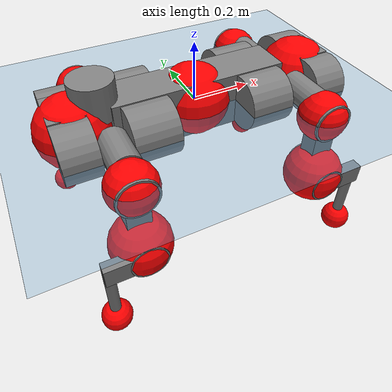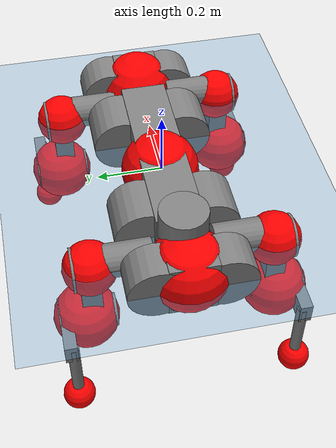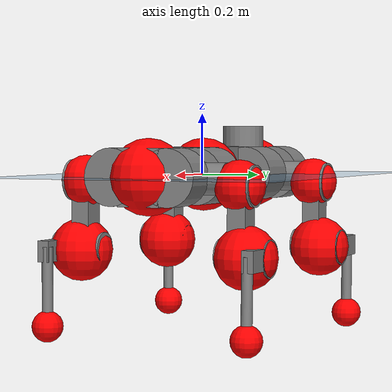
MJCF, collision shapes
<mujoco model="anymal_c">
  <compiler angle="radian" assetdir="assets" balanceinertia="true" inertiafromgeom="false"/>

  <option timestep="0.005" density="1.2" viscosity="2e-05"/>

  <size nkey="1"/>

  <visual>
    <quality shadowsize="8192"/>
    <map shadowclip="0.5"/>
  </visual>

  <default>
    <default class="/">
      <material specular="0" shininess="0.25"/>
      <geom contype="0" conaffinity="0" group="1" solref="-1000 -80"/>
      <site size="0.01 0.005 0.005" group="5"/>
      <general forcelimited="true" forcerange="-80 80" biastype="affine" gainprm="80" biasprm="0 -80 -2"/>
      <default class="anymal_c">
        <joint armature="0.01" damping="0.01" frictionloss="0.1"/>
        <default class="visual">
          <geom type="mesh" group="2"/>
          <default class="visual_zflip"/>
        </default>
        <default class="collision">
          <geom type="cylinder" group="3"/>
          <default class="foot">
            <geom size="0.03 0 0" type="sphere" condim="6" priority="1" friction="0.8 0.02 0.01" solimp="0.015 1 0.03"/>
          </default>
        </default>
      </default>
      <default class="reward_collision_sphere">
        <geom group="5" rgba="1 0 0 1"/>
      </default>
    </default>
  </default>

  <asset>
    <texture type="skybox" colorspace="auto" name="//unnamed_texture_0" builtin="gradient" rgb1="0.95 0.95 0.95" rgb2="0.95 0.95 0.95" width="100" height="600"/>
    <texture type="2d" colorspace="auto" name="texplane" builtin="checker" rgb1="0.345 0.575 0.748" rgb2="0.345 0.575 0.748" markrgb="1 1 1" width="512" height="512"/>
    <texture type="2d" colorspace="linear" name="base" file="base.png"/>
    <texture type="2d" colorspace="linear" name="top_shell" file="top_shell.png"/>
    <texture type="2d" colorspace="linear" name="bottom_shell" file="bottom_shell.png"/>
    <texture type="2d" colorspace="linear" name="remote" file="remote.png"/>
    <texture type="2d" colorspace="linear" name="hatch" file="hatch.png"/>
    <texture type="2d" colorspace="linear" name="handle" file="handle.png"/>
    <texture type="2d" colorspace="linear" name="face" file="face.png"/>
    <texture type="2d" colorspace="linear" name="battery" file="battery.png"/>
    <texture type="2d" colorspace="linear" name="lidar_cage" file="lidar_cage.png"/>
    <texture type="2d" colorspace="linear" name="depth_camera" file="depth_camera.png"/>
    <texture type="2d" colorspace="linear" name="wide_angle_camera" file="wide_angle_camera.png"/>
    <texture type="2d" colorspace="linear" name="lidar" file="lidar.png"/>
    <texture type="2d" colorspace="linear" name="drive" file="drive.png"/>
    <texture type="2d" colorspace="linear" name="hip_l" file="hip_l.png"/>
    <texture type="2d" colorspace="linear" name="shank_l" file="shank_l.png"/>
    <texture type="2d" colorspace="linear" name="foot" file="foot.png"/>
    <texture type="2d" colorspace="linear" name="thigh" file="thigh.png"/>
    <texture type="2d" colorspace="linear" name="shank_r" file="shank_r.png"/>
    <texture type="2d" colorspace="linear" name="hip_r" file="hip_r.png"/>
    <material name="MatPlane" class="/" texture="texplane" texuniform="true" texrepeat="2 2" specular="0.9" shininess="0.5"/>
    <material name="black_plastic" class="/" rgba="0.007 0.007 0.007 1"/>
    <material name="green" class="/" rgba="0.052 0.178 0.033 1"/>
    <material name="red" class="/" rgba="0.178 0.006 0.005 1"/>
    <material name="yellow" class="/" rgba="0.178 0.119 0.006 1"/>
    <material name="lwl" class="/" rgba="0.8 0.8 0.8 1"/>
    <material name="base" class="/" texture="base"/>
    <material name="top_shell" class="/" texture="top_shell"/>
    <material name="bottom_shell" class="/" texture="bottom_shell"/>
    <material name="hip_l" class="/" texture="hip_l"/>
    <material name="thigh" class="/" texture="thigh"/>
    <material name="shank_l" class="/" texture="shank_l"/>
    <material name="foot" class="/" texture="foot"/>
    <material name="hip_r" class="/" texture="hip_r"/>
    <material name="shank" class="/" texture="shank_r"/>
    <material name="hatch" class="/" texture="hatch"/>
    <material name="remote" class="/" texture="remote"/>
    <material name="handle" class="/" texture="handle"/>
    <material name="face" class="/" texture="face"/>
    <material name="depth_camera" class="/" texture="depth_camera"/>
    <material name="wide_angle_camera" class="/" texture="wide_angle_camera"/>
    <material name="battery" class="/" texture="battery"/>
    <material name="lidar_cage" class="/" texture="lidar_cage"/>
    <material name="lidar" class="/" texture="lidar"/>
    <material name="drive" class="/" texture="drive"/>
    <mesh name="base_0" class="/" file="base_0.obj"/>
    <mesh name="base_1" class="/" file="base_1.obj"/>
    <mesh name="base_2" class="/" file="base_2.obj"/>
    <mesh name="base_3" class="/" file="base_3.obj"/>
    <mesh name="base_4" class="/" file="base_4.obj"/>
    <mesh name="base_5" class="/" file="base_5.obj"/>
    <mesh name="top_shell" class="/" file="top_shell.obj"/>
    <mesh name="bottom_shell" class="/" file="bottom_shell.obj"/>
    <mesh name="remote" class="/" file="remote.obj"/>
    <mesh name="handle" class="/" file="handle.obj"/>
    <mesh name="face" class="/" file="face.obj"/>
    <mesh name="wide_angle_camera" class="/" file="wide_angle_camera.obj"/>
    <mesh name="depth_camera" class="/" file="depth_camera.obj"/>
    <mesh name="battery" class="/" file="battery.obj"/>
    <mesh name="lidar_cage" class="/" file="lidar_cage.obj"/>
    <mesh name="lidar" class="/" file="lidar.obj"/>
    <mesh name="drive" class="/" file="drive.obj"/>
    <mesh name="hip_l" class="/" file="hip_l.obj"/>
    <mesh name="thigh" class="/" file="thigh.obj"/>
    <mesh name="shank_l" class="/" file="shank_l.obj"/>
    <mesh name="foot" class="/" file="foot.obj"/>
    <mesh name="hip_r" class="/" file="hip_r.obj"/>
    <mesh name="hatch" class="/" file="hatch.obj"/>
    <mesh name="shank_r" class="/" file="shank_r.obj"/>
  </asset>

  <worldbody>
    <geom name="floor" class="/" size="100 100 0.125" type="plane" group="0" material="MatPlane"/>
    <light name="toplight_shadow" class="/" pos="0 0 5" dir="0.0990148 0.0990148 -0.990148" type="directional" ambient="0.04 0.04 0.04" diffuse="0.55 0.55 0.55" specular="0.12 0.12 0.12"/>
    <light name="toplight_fill" class="/" pos="0 0 5" dir="0.0990148 0.0990148 -0.990148" type="directional" castshadow="false" ambient="0.04 0.04 0.04" diffuse="0.3 0.3 0.3" specular="0.08 0.08 0.08"/>
    <body name="trunk" childclass="anymal_c" pos="-0.00153798 0.00490462 0.000702485" quat="0.999997 -0.00113699 -0.00137423 -0.00172603">
      <inertial pos="0.00577355 0.00974747 0.0309121" quat="0.486665 0.498129 0.511254 0.503632" mass="20.3552" diaginertia="0.455837 3.24112 0.0554089"/>
      <joint name="//unnamed_joint_0" type="free" armature="0" damping="0" frictionloss="0"/>
      <geom name="//unnamed_geom_1" class="visual" material="green" mesh="base_0"/>
      <geom name="//unnamed_geom_2" class="visual" material="yellow" mesh="base_1"/>
      <geom name="//unnamed_geom_3" class="visual" material="red" mesh="base_2"/>
      <geom name="//unnamed_geom_4" class="visual" material="black_plastic" mesh="base_3"/>
      <geom name="//unnamed_geom_5" class="visual" material="lwl" mesh="base_4"/>
      <geom name="//unnamed_geom_6" class="visual" material="base" mesh="base_5"/>
      <geom name="trunk_1" class="collision" size="0.292473 0.0705968 0.0907674" type="box"/>
      <geom name="trunk_2" class="collision" size="0.0907674 0.0731182" pos="0.194221 0.0962715 0" quat="0.707107 0 0.707107 0"/>
      <geom name="trunk_3" class="collision" size="0.0907674 0.0731182" pos="-0.194221 0.0962715 0" quat="0.707107 0 0.707107 0"/>
      <geom name="trunk_4" class="collision" size="0.0907674 0.0731182" pos="0.194221 -0.0962715 0" quat="0.707107 0 0.707107 0"/>
      <geom name="trunk_5" class="collision" size="0.0907674 0.0731182" pos="-0.194221 -0.0962715 0" quat="0.707107 0 0.707107 0"/>
      <geom name="//unnamed_geom_12" class="visual" material="top_shell" mesh="top_shell"/>
      <geom name="//unnamed_geom_13" class="visual" material="bottom_shell" mesh="bottom_shell"/>
      <geom name="//unnamed_geom_14" class="visual" material="remote" mesh="remote"/>
      <geom name="//unnamed_geom_15" class="visual" material="handle" mesh="handle"/>
      <geom name="//unnamed_geom_16" class="visual" pos="0.370137 0 0" quat="1 0 0 0" material="face" mesh="face"/>
      <geom name="trunk_6" class="collision" size="0.055469 0.0705968 0.0907674" pos="0.41925 0 0" type="box"/>
      <geom name="//unnamed_geom_18" class="collision" size="0.0907674 0.055469" pos="0.41925 0.0962715 0" quat="0.707107 0 0.707107 0"/>
      <geom name="//unnamed_geom_19" class="collision" size="0.0907674 0.055469" pos="0.41925 -0.0962715 0" quat="0.707107 0 0.707107 0"/>
      <geom name="//unnamed_geom_20" class="visual" pos="0.412235 0 -0.0210821" quat="0.965926 0 0.258819 0" material="depth_camera" mesh="depth_camera"/>
      <geom name="//unnamed_geom_21" class="visual" pos="0.458094 0 0.0113368" material="wide_angle_camera" mesh="wide_angle_camera"/>
      <geom name="//unnamed_geom_22" class="visual_zflip" pos="-0.370137 0 0" quat="0 0 0 1" material="face" mesh="face"/>
      <geom name="trunk_7" class="collision" size="0.055469 0.0705968 0.0907674" pos="-0.41925 0 0" quat="0 0 0 1" type="box"/>
      <geom name="//unnamed_geom_24" class="collision" size="0.0907674 0.055469" pos="-0.41925 -0.0962715 0" quat="0 -0.707107 0 0.707107"/>
      <geom name="//unnamed_geom_25" class="collision" size="0.0907674 0.055469" pos="-0.41925 0.0962715 0" quat="0 -0.707107 0 0.707107"/>
      <geom name="//unnamed_geom_26" class="visual" pos="-0.412235 0 -0.0210821" quat="0 -0.258819 0 0.965926" material="depth_camera" mesh="depth_camera"/>
      <geom name="//unnamed_geom_27" class="visual_zflip" pos="-0.458094 0 0.0113368" quat="0 0 0 1" material="wide_angle_camera" mesh="wide_angle_camera"/>
      <geom name="//unnamed_geom_28" class="visual" material="battery" mesh="battery"/>
      <geom name="//unnamed_geom_29" class="visual" pos="0 0.11148 0.0230307" quat="0.683013 -0.183013 0.183013 0.683013" material="depth_camera" mesh="depth_camera"/>
      <geom name="//unnamed_geom_30" class="visual" pos="0 -0.11148 0.0230307" quat="0.683013 0.183013 0.183013 -0.683013" material="depth_camera" mesh="depth_camera"/>
      <geom name="//unnamed_geom_31" class="visual" pos="-0.325042 0 0.0556616" quat="1 0 0 0" material="lidar_cage" mesh="lidar_cage"/>
      <geom name="trunk_8" class="collision" size="0.0705968 0.0605116" pos="-0.325042 0 0.1011"/>
      <geom name="//unnamed_geom_33" class="visual" pos="-0.325042 0.000189497 0.107688" quat="0.707107 0 0 -0.707107" material="lidar" mesh="lidar"/>
      <geom name="//unnamed_geom_34" class="visual" pos="0.267802 0.142812 1.06607e-08" quat="0.258819 0.965926 0 0" material="drive" mesh="drive"/>
      <geom name="//unnamed_geom_35" class="visual" pos="0.267802 -0.142812 -1.06607e-08" quat="0.258819 -0.965926 0 0" material="drive" mesh="drive"/>
      <geom name="//unnamed_geom_36" class="visual" pos="-0.267802 0.142812 -1.06607e-08" quat="0 0 0.965926 -0.258819" material="drive" mesh="drive"/>
      <geom name="//unnamed_geom_37" class="visual" pos="-0.267802 -0.142812 1.06607e-08" quat="0 0 -0.965926 -0.258819" material="drive" mesh="drive"/>
      <geom name="//unnamed_geom_38" class="visual" pos="0.103585 0 0.0552829" quat="1 0 0 0" material="hatch" mesh="hatch"/>
      <geom name="//unnamed_geom_39" class="reward_collision_sphere" size="0.121023"/>
      <geom name="//unnamed_geom_40" class="reward_collision_sphere" size="0.121023" pos="0.401837 0 0"/>
      <geom name="//unnamed_geom_41" class="reward_collision_sphere" size="0.121023" pos="-0.401837 0 0"/>
      <site name="imu" pos="0.213739 0.0210204 0.0445905" size="0.0100853"/>
      <camera name="track" pos="0 -2.75061 0" quat="0.707107 0.707107 0 0" mode="trackcom"/>
      <camera name="ego_camera" pos="0.401837 0 -0.030292" quat="-0.5 -0.5 0.5 0.5"/>
      <body name="LF_HIP" pos="0.269994 0.143161 -0.000643766" quat="0.259491 0.965745 -0.000973385 0.000136836">
        <inertial pos="0.0507226 -0.0139819 -0.00519322" quat="-0.130774 0.674169 -0.117446 0.717357" mass="2.93485" diaginertia="0.00326927 0.0251322 0.000805564"/>
        <joint name="LF_HAA" pos="0 0 0" axis="0.999988 -0.00246096 0.00431994" range="-0.654672 0.467301" armature="0.00960064" damping="0.0216259" frictionloss="0.0944385"/>
        <geom name="//unnamed_geom_42" class="visual" pos="0 0.00062712 -0.000103004" quat="0.258819 -0.965926 0 0" material="hip_l" mesh="hip_l"/>
        <geom name="//unnamed_geom_43" class="visual" pos="0.053489 -0.0709444 -0.0363886" quat="0.183013 -0.683013 0.683013 0.183013" material="drive" mesh="drive"/>
        <geom name="//unnamed_geom_44" class="collision" size="0.0504263 0.0705968" pos="0.053489 -0.0164484 -0.00522916" quat="-0.353553 -0.612372 0.612372 -0.353553"/>
        <body name="LF_THIGH" pos="0.0466467 -0.103211 -0.0317475" quat="0.179205 -0.681157 0.685811 0.183234">
          <inertial pos="0.026303 -0.0101478 -0.187062" quat="0.992812 -0.00249618 -0.0883847 0.0806671" mass="3.0656" diaginertia="0.0191501 0.131286 0.00106465"/>
          <joint name="LF_HFE" pos="0 0 0" axis="0.999662 -0.0188304 -0.0179033" range="-3.03821 3.31524" armature="0.0051637" damping="0.0179143" frictionloss="0.118992"/>
          <geom name="//unnamed_geom_45" class="visual" pos="-0.00959659 -1.5122e-05 0" quat="0.707107 0 0 -0.707107" material="thigh" mesh="thigh"/>
          <geom name="//unnamed_geom_46" class="collision" size="0.0655542 0.0403411" pos="0.0357189 0 0" quat="0.5 0.5 -0.5 -0.5"/>
          <geom name="//unnamed_geom_47" class="collision" size="0.0378197 0.0302558 0.142519" pos="0.0267891 0 -0.107017" quat="0.707107 0 0 -0.707107" type="box"/>
          <geom name="//unnamed_geom_48" class="visual" pos="0.089565 0 -0.215831" quat="1 0 0 0" material="drive" mesh="drive"/>
          <geom name="//unnamed_geom_49" class="collision" size="0.0504263 0.0705968" pos="0.027057 0 -0.215831" quat="0.707107 0 0.707107 0"/>
          <geom name="//unnamed_geom_50" class="reward_collision_sphere" size="0.0806821" pos="0.0223243 0 0"/>
          <body name="LF_SHANK" pos="0.0899236 -0.000138961 -0.220657" quat="0.999999 0.00106528 0.00031319 0.000234302">
            <inertial pos="0.0128667 -0.079813 -0.0544117" quat="0.992927 -0.11488 -0.00607681 -0.0293516" mass="0.628399" diaginertia="0.00605729 0.0427505 0.00028806"/>
            <joint name="LF_KFE" pos="0 0 0" axis="0.999939 0.010615 0.00293052" range="-3.34563 3.00933" armature="0.0120254" damping="0.0443032" frictionloss="0.0961863"/>
            <geom name="//unnamed_geom_51" class="visual" pos="-0.00312924 -0.0166853 0" quat="0.707107 0 0 -0.707107" material="shank_l" mesh="shank_l"/>
            <geom name="LF_kfe_act" class="collision" size="0.0605116 0.0201705" pos="0.0178594 0 0" quat="0.5 0.5 -0.5 -0.5"/>
            <geom name="//unnamed_geom_53" class="collision" size="0.0579893 0.0340378 0.019162" pos="0.0178594 -0.0790788 0" quat="0.5 0.5 -0.5 -0.5" type="box"/>
            <geom name="//unnamed_geom_54" class="visual" pos="0.011654 -0.126335 -0.255945" quat="0.382683 0 0 -0.92388" material="foot" mesh="foot"/>
            <geom name="LF_calf" class="collision" size="0.0176492 0.142456" pos="0.0116533 -0.120958 -0.127972" quat="0.707107 0 0 -0.707107"/>
            <geom name="LF_foot" class="foot" size="0.0348396" pos="0.0116533 -0.120958 -0.238906" quat="0.707107 0 0 -0.707107"/>
            <geom name="//unnamed_geom_57" class="reward_collision_sphere" size="0.100853" pos="-0.0446486 0 0"/>
            <geom name="//unnamed_geom_58" class="reward_collision_sphere" size="0.0504263" pos="0.0116533 -0.120958 -0.238906"/>
            <site name="LF_foot" class="foot" pos="0.0116533 -0.120958 -0.238906" quat="0.707107 0 0 -0.707107" size="0.0100853"/>
          </body>
        </body>
      </body>
      <body name="RF_HIP" pos="0.277889 -0.140385 0.0122509" quat="0.258669 -0.965966 6.94475e-05 0.00017706">
        <inertial pos="0.0494159 0.0194729 -0.00402787" quat="0.162925 0.675887 0.09734 0.71215" mass="2.96531" diaginertia="0.00362177 0.0241644 0.000823571"/>
        <joint name="RF_HAA" pos="0 0 0" axis="0.99984 -0.0116098 0.0135845" stiffness="0.0518544" range="-0.459542 0.570604" armature="0.0111194" damping="0.0289916" frictionloss="0.0989887"/>
        <geom name="//unnamed_geom_59" class="visual" pos="0 -0.000627115 -0.000103004" quat="0.258819 0.965926 0 0" material="hip_r" mesh="hip_r"/>
        <geom name="//unnamed_geom_60" class="visual" pos="0.053489 0.0709444 -0.0363886" quat="0.183013 0.683013 0.683013 -0.183013" material="drive" mesh="drive"/>
        <geom name="//unnamed_geom_61" class="collision" size="0.0504263 0.0705968" pos="0.053489 0.0164484 -0.00522916" quat="-0.353553 0.612372 0.612372 0.353553"/>
        <body name="RF_THIGH" pos="0.0554074 0.0952856 -0.0238266" quat="0.183607 0.682836 0.683018 -0.183058">
          <inertial pos="0.0245785 0.00461914 -0.194746" quat="0.993009 -0.00299813 -0.0752062 0.0909307" mass="3.13376" diaginertia="0.0182425 0.146594 0.00103894"/>
          <joint name="RF_HFE" pos="0 0 0" axis="0.999962 -0.00513378 -0.00707023" range="-3.17675 3.11628" armature="0.0138081" damping="0" frictionloss="0.122645"/>
          <geom name="//unnamed_geom_62" class="visual" pos="-0.00959659 -1.5122e-05 0" quat="0.707107 0 0 -0.707107" material="thigh" mesh="thigh"/>
          <geom name="//unnamed_geom_63" class="collision" size="0.0655542 0.0403411" pos="0.0357189 0 0" quat="0.5 0.5 0.5 0.5"/>
          <geom name="//unnamed_geom_64" class="collision" size="0.0378197 0.0302558 0.142519" pos="0.0267891 0 -0.107017" quat="0.707107 0 0 0.707107" type="box"/>
          <geom name="//unnamed_geom_65" class="visual" pos="0.089565 0 -0.215831" quat="1 0 0 0" material="drive" mesh="drive"/>
          <geom name="//unnamed_geom_66" class="collision" size="0.0504263 0.0705968" pos="0.027057 0 -0.215831" quat="0.707107 0 0.707107 0"/>
          <geom name="//unnamed_geom_67" class="reward_collision_sphere" size="0.0806821" pos="0.0223243 0 0"/>
          <body name="RF_SHANK" pos="0.0885697 -0.00536352 -0.223931" quat="1 -2.43056e-05 6.3646e-05 0.000162029">
            <inertial pos="0.0092468 0.0794984 -0.0592496" quat="0.992308 0.122001 -0.00676023 0.01985" mass="0.529108" diaginertia="0.00514671 0.0370502 0.00025622"/>
            <joint name="RF_KFE" pos="0 0 0" axis="0.999972 0.00676191 0.00318238" range="-3.15881 3.13515" armature="0.00952808" damping="0.0532174" frictionloss="0.107856"/>
            <geom name="//unnamed_geom_68" class="visual" pos="-0.00312922 0.0166852 0" quat="0.707107 0 0 0.707107" material="shank" mesh="shank_r"/>
            <geom name="RF_kfe_act" class="collision" size="0.0605116 0.0201705" pos="0.0178594 0 0" quat="0.5 0.5 0.5 0.5"/>
            <geom name="//unnamed_geom_70" class="collision" size="0.0579893 0.0340378 0.019162" pos="0.0178594 0.0790788 0" quat="0.5 0.5 0.5 0.5" type="box"/>
            <geom name="//unnamed_geom_71" class="visual" pos="0.0116525 0.126335 -0.255945" quat="0.382683 0 0 0.92388" material="foot" mesh="foot"/>
            <geom name="RF_calf" class="collision" size="0.0176492 0.142456" pos="0.0116533 0.120958 -0.127972" quat="0.707107 0 0 0.707107"/>
            <geom name="RF_foot" class="foot" size="0.0415637" pos="0.0116533 0.120958 -0.238906" quat="0.707107 0 0 0.707107"/>
            <geom name="//unnamed_geom_74" class="reward_collision_sphere" size="0.100853" pos="-0.0446486 0 0"/>
            <geom name="//unnamed_geom_75" class="reward_collision_sphere" size="0.0504263" pos="0.0116533 0.120958 -0.238906"/>
            <site name="RF_foot" class="foot" pos="0.0116533 0.120958 -0.238906" quat="0.707107 0 0 0.707107" size="0.0100853"/>
          </body>
        </body>
      </body>
      <body name="LH_HIP" pos="-0.266514 0.140213 -0.00593021" quat="0.00010929 -0.00094466 0.96573 -0.259549">
        <inertial pos="0.0513879 0.0204513 -0.0105122" quat="0.135966 0.678374 0.127559 0.710669" mass="3.29114" diaginertia="0.0033664 0.0256104 0.000797885"/>
        <joint name="LH_HAA" pos="0 0 0" axis="0.99995 0.00996505 -0.000312509" range="-0.636825 0.744827" armature="0.00987338" damping="0" frictionloss="0.0695909"/>
        <geom name="//unnamed_geom_76" class="visual" pos="0 -0.000627115 -0.000103004" quat="-0.258819 -0.965926 0 0" material="hip_r" mesh="hip_r"/>
        <geom name="//unnamed_geom_77" class="visual" pos="0.053489 0.0709444 -0.0363886" quat="0.183013 0.683013 0.683013 -0.183013" material="drive" mesh="drive"/>
        <geom name="//unnamed_geom_78" class="collision" size="0.0504263 0.0705968" pos="0.053489 0.0164484 -0.00522916" quat="-0.353553 0.612372 0.612372 0.353553"/>
        <body name="LH_THIGH" pos="0.0521194 0.10275 -0.0320626" quat="0.179081 0.682585 0.684027 -0.1847">
          <inertial pos="0.0295008 -0.0108879 -0.187131" quat="0.994604 -0.00543153 -0.0855163 0.0584756" mass="3.55043" diaginertia="0.018023 0.141027 0.000943699"/>
          <joint name="LH_HFE" pos="0 0 0" axis="0.998703 0.00443759 0.0507223" range="-3.17258 3.09907" armature="0.00765998" damping="0" frictionloss="0.119162"/>
          <geom name="//unnamed_geom_79" class="visual" pos="-0.00959659 -1.5122e-05 0" quat="0.707107 0 0 -0.707107" material="thigh" mesh="thigh"/>
          <geom name="//unnamed_geom_80" class="collision" size="0.0655542 0.0403411" pos="0.0357189 0 0" quat="0.5 0.5 -0.5 -0.5"/>
          <geom name="//unnamed_geom_81" class="collision" size="0.0378197 0.0302558 0.142519" pos="0.0267891 0 -0.107017" quat="0.707107 0 0 -0.707107" type="box"/>
          <geom name="//unnamed_geom_82" class="visual" pos="0.089565 0 -0.215831" quat="1 0 0 0" material="drive" mesh="drive"/>
          <geom name="//unnamed_geom_83" class="collision" size="0.0504263 0.0705968" pos="0.027057 0 -0.215831" quat="0.707107 0 0.707107 0"/>
          <geom name="//unnamed_geom_84" class="reward_collision_sphere" size="0.0806821" pos="0.0223243 0 0"/>
          <body name="LH_SHANK" pos="0.0919081 -0.00173432 -0.221351" quat="0.999999 -0.000104658 -0.00162667 -0.000469447">
            <inertial pos="0.00591274 0.0772052 -0.0630188" quat="0.99232 0.121372 0.00620656 0.0230351" mass="0.616453" diaginertia="0.006249 0.0493578 0.000304808"/>
            <joint name="LH_KFE" pos="0 0 0" axis="0.999922 0.0114755 0.00498591" range="-3.33682 3.15264" armature="0.00495066" damping="0" frictionloss="0.123955"/>
            <geom name="//unnamed_geom_85" class="visual" pos="-0.00312922 0.0166852 0" quat="-0.707107 0 0 -0.707107" material="shank" mesh="shank_r"/>
            <geom name="LH_kfe_act" class="collision" size="0.0605116 0.0201705" pos="0.0178594 0 0" quat="0.5 0.5 -0.5 -0.5"/>
            <geom name="//unnamed_geom_87" class="collision" size="0.0579893 0.0340378 0.019162" pos="0.0178594 0.0790788 0" quat="0.5 0.5 -0.5 -0.5" type="box"/>
            <geom name="//unnamed_geom_88" class="visual" pos="0.0116525 0.126335 -0.255945" quat="-0.382683 0 0 -0.92388" material="foot" mesh="foot"/>
            <geom name="LH_calf" class="collision" size="0.0176492 0.142456" pos="0.0116533 0.120958 -0.127972" quat="0.707107 0 0 -0.707107"/>
            <geom name="LH_foot" class="foot" size="0.035379" pos="0.0116533 0.120958 -0.238906" quat="0.707107 0 0 -0.707107"/>
            <geom name="//unnamed_geom_91" class="reward_collision_sphere" size="0.100853" pos="-0.0446486 0 0"/>
            <geom name="//unnamed_geom_92" class="reward_collision_sphere" size="0.0504263" pos="0.0116533 0.120958 -0.238906"/>
            <site name="LH_foot" class="foot" pos="0.0116533 0.120958 -0.238906" quat="0.707107 0 0 -0.707107" size="0.0100853"/>
          </body>
        </body>
      </body>
      <body name="RH_HIP" pos="-0.257989 -0.144823 -0.00118488" quat="0.00446838 -0.00274708 -0.966194 -0.257763">
        <inertial pos="0.0524368 -0.0204041 -0.00795711" quat="-0.131217 0.705686 -0.13418 0.683216" mass="2.97326" diaginertia="0.00342551 0.0248804 0.00073416"/>
        <joint name="RH_HAA" pos="0 0 0" axis="0.999941 -0.00755403 -0.0078482" range="-0.734589 0.389071" armature="0.00580907" damping="0.0210037" frictionloss="0.0795106"/>
        <geom name="//unnamed_geom_93" class="visual" pos="0 0.00062712 -0.000103004" quat="-0.258819 0.965926 0 0" material="hip_l" mesh="hip_l"/>
        <geom name="//unnamed_geom_94" class="visual" pos="0.053489 -0.0709444 -0.0363886" quat="-0.183013 0.683013 -0.683013 -0.183013" material="drive" mesh="drive"/>
        <geom name="//unnamed_geom_95" class="collision" size="0.0504263 0.0705968" pos="0.053489 -0.0164484 -0.00522916" quat="0.353553 0.612372 -0.612372 0.353553"/>
        <body name="RH_THIGH" pos="0.0586406 -0.106311 -0.030586" quat="-0.182979 0.682387 -0.683558 -0.183348">
          <inertial pos="0.0288607 0.0060163 -0.187693" quat="0.993814 -0.00673789 -0.0768987 0.0798488" mass="3.13809" diaginertia="0.016889 0.148498 0.00110807"/>
          <joint name="RH_HFE" pos="0 0 0" axis="0.999995 0.00300717 -0.000166496" range="-3.09878 2.93222" armature="0.0149553" damping="0" frictionloss="0.0914791"/>
          <geom name="//unnamed_geom_96" class="visual" pos="-0.00959659 -1.5122e-05 0" quat="0.707107 0 0 -0.707107" material="thigh" mesh="thigh"/>
          <geom name="//unnamed_geom_97" class="collision" size="0.0655542 0.0403411" pos="0.0357189 0 0" quat="0.5 0.5 0.5 0.5"/>
          <geom name="//unnamed_geom_98" class="collision" size="0.0378197 0.0302558 0.142519" pos="0.0267891 0 -0.107017" quat="0.707107 0 0 0.707107" type="box"/>
          <geom name="//unnamed_geom_99" class="visual" pos="0.089565 0 -0.215831" quat="1 0 0 0" material="drive" mesh="drive"/>
          <geom name="//unnamed_geom_100" class="collision" size="0.0504263 0.0705968" pos="0.027057 0 -0.215831" quat="0.707107 0 0.707107 0"/>
          <geom name="//unnamed_geom_101" class="reward_collision_sphere" size="0.0806821" pos="0.0223243 0 0"/>
          <body name="RH_SHANK" pos="0.0858213 -1.76944e-05 -0.218308" quat="1 -0.000589834 0.000347922 -5.34082e-05">
            <inertial pos="0.00866063 -0.0826296 -0.0622416" quat="0.992842 -0.116779 0.000100864 -0.0250507" mass="0.565359" diaginertia="0.00572735 0.0437524 0.000272153"/>
            <joint name="RH_KFE" pos="0 0 0" axis="0.999532 0.0304425 0.00288999" range="-3.29837 3.08334" armature="0.00975191" damping="0" frictionloss="0.0831373"/>
            <geom name="//unnamed_geom_102" class="visual" pos="-0.00312924 -0.0166853 0" quat="0.707107 0 0 -0.707107" material="shank_l" mesh="shank_l"/>
            <geom name="RH_kfe_act" class="collision" size="0.0605116 0.0201705" pos="0.0178594 0 0" quat="0.5 0.5 0.5 0.5"/>
            <geom name="//unnamed_geom_104" class="collision" size="0.0579893 0.0340378 0.019162" pos="0.0178594 -0.0790788 0" quat="0.5 0.5 0.5 0.5" type="box"/>
            <geom name="//unnamed_geom_105" class="visual" pos="0.011654 -0.126335 -0.255945" quat="0.382683 0 0 -0.92388" material="foot" mesh="foot"/>
            <geom name="RH_calf" class="collision" size="0.0176492 0.142456" pos="0.0116533 -0.120958 -0.127972" quat="0.707107 0 0 0.707107"/>
            <geom name="RH_foot" class="foot" size="0.0182788" pos="0.0116533 -0.120958 -0.238906" quat="0.707107 0 0 0.707107"/>
            <geom name="//unnamed_geom_108" class="reward_collision_sphere" size="0.100853" pos="-0.0446486 0 0"/>
            <geom name="//unnamed_geom_109" class="reward_collision_sphere" size="0.0504263" pos="0.0116533 -0.120958 -0.238906"/>
            <site name="RH_foot" class="foot" pos="0.0116533 -0.120958 -0.238906" quat="0.707107 0 0 0.707107" size="0.0100853"/>
          </body>
        </body>
      </body>
    </body>
  </worldbody>

  <contact>
    <pair class="/" geom1="floor" geom2="LF_foot" name="//unnamed_contact_0"/>
    <pair class="/" geom1="floor" geom2="RF_foot" name="//unnamed_contact_1"/>
    <pair class="/" geom1="floor" geom2="LH_foot" name="//unnamed_contact_2"/>
    <pair class="/" geom1="floor" geom2="RH_foot" name="//unnamed_contact_3"/>
  </contact>

  <actuator>
    <general name="LF_HAA" class="/" joint="LF_HAA" forcerange="-73.1088 73.1088" gainprm="78.3915" biasprm="0 -78.3915 -2.18818"/>
    <general name="LF_HFE" class="/" joint="LF_HFE" forcerange="-81.3972 81.3972" gainprm="78.3915" biasprm="0 -78.3915 -2.18818"/>
    <general name="LF_KFE" class="/" joint="LF_KFE" forcerange="-87.767 87.767" gainprm="78.3915" biasprm="0 -78.3915 -2.18818"/>
    <general name="RF_HAA" class="/" joint="RF_HAA" forcerange="-89.9392 89.9392" gainprm="78.3915" biasprm="0 -78.3915 -2.18818"/>
    <general name="RF_HFE" class="/" joint="RF_HFE" forcerange="-81.6269 81.6269" gainprm="78.3915" biasprm="0 -78.3915 -2.18818"/>
    <general name="RF_KFE" class="/" joint="RF_KFE" forcerange="-98.0665 98.0665" gainprm="78.3915" biasprm="0 -78.3915 -2.18818"/>
    <general name="LH_HAA" class="/" joint="LH_HAA" forcerange="-83.6563 83.6563" gainprm="78.3915" biasprm="0 -78.3915 -2.18818"/>
    <general name="LH_HFE" class="/" joint="LH_HFE" forcerange="-80.1658 80.1658" gainprm="78.3915" biasprm="0 -78.3915 -2.18818"/>
    <general name="LH_KFE" class="/" joint="LH_KFE" forcerange="-80.2679 80.2679" gainprm="78.3915" biasprm="0 -78.3915 -2.18818"/>
    <general name="RH_HAA" class="/" joint="RH_HAA" forcerange="-89.0541 89.0541" gainprm="78.3915" biasprm="0 -78.3915 -2.18818"/>
    <general name="RH_HFE" class="/" joint="RH_HFE" forcerange="-76.3989 76.3989" gainprm="78.3915" biasprm="0 -78.3915 -2.18818"/>
    <general name="RH_KFE" class="/" joint="RH_KFE" forcerange="-55.8654 55.8654" gainprm="78.3915" biasprm="0 -78.3915 -2.18818"/>
  </actuator>

  <sensor>
    <gyro site="imu" name="imu_angular_velocity"/>
    <velocimeter site="imu" name="imu_linear_velocity"/>
    <framelinvel objtype="site" objname="LF_foot" name="LF_foot_global_linear_velocity"/>
    <framelinvel objtype="site" objname="RF_foot" name="RF_foot_global_linear_velocity"/>
    <framelinvel objtype="site" objname="LH_foot" name="LH_foot_global_linear_velocity"/>
    <framelinvel objtype="site" objname="RH_foot" name="RH_foot_global_linear_velocity"/>
  </sensor>

  <keyframe>
    <key name="home" qpos="0 0 0.55 1 0 0 0 0 0.4 -0.8 0 -0.4 0.8 0 -0.4 0.8 0 0.4 -0.8"/>
  </keyframe>
</mujoco>
